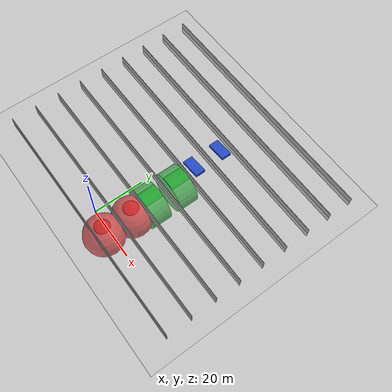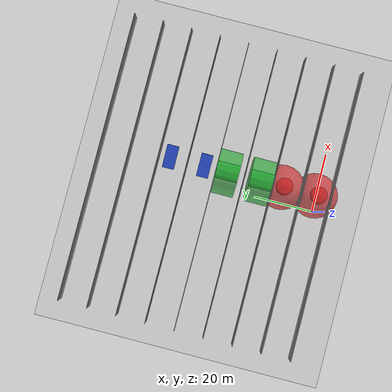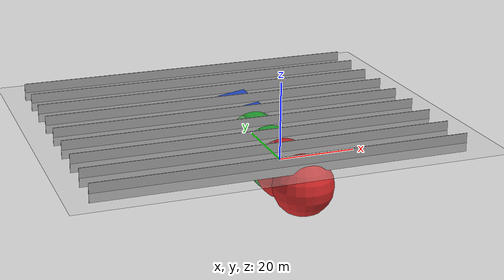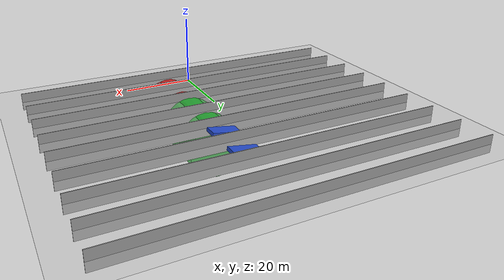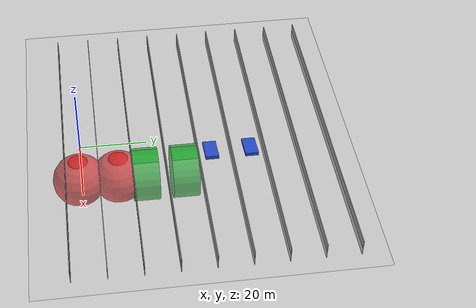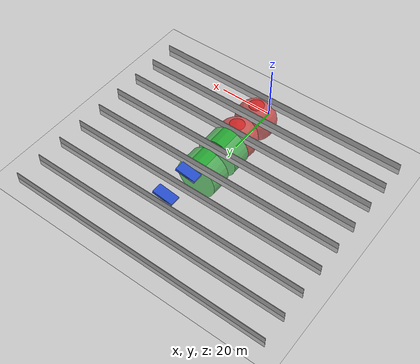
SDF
<sdf version='1.7'>
  <world name='default'>
    <light name='sun' type='directional'>
      <cast_shadows>1</cast_shadows>
      <pose>0 0 10 0 -0 0</pose>
      <diffuse>0.8 0.8 0.8 1</diffuse>
      <specular>0.2 0.2 0.2 1</specular>
      <attenuation>
        <range>1000</range>
        <constant>0.9</constant>
        <linear>0.01</linear>
        <quadratic>0.001</quadratic>
      </attenuation>
      <direction>-0.5 0.1 -0.9</direction>
      <spot>
        <inner_angle>0</inner_angle>
        <outer_angle>0</outer_angle>
        <falloff>0</falloff>
      </spot>
    </light>
    <model name='ground_plane'>
      <static>1</static>
      <pose>0 35 0 0 -0 0</pose>
      <link name='link'>
        <collision name='collision'>
          <geometry>
            <plane>
              <normal>0 0 1</normal>
              <size>100 100</size>
            </plane>
          </geometry>
          <surface>
            <friction>
              <ode>
                <mu>100</mu>
                <mu2>50</mu2>
              </ode>
              <torsional>
                <ode/>
              </torsional>
            </friction>
            <contact>
              <ode/>
            </contact>
            <bounce/>
          </surface>
          <max_contacts>10</max_contacts>
        </collision>
        <visual name='visual'>
          <cast_shadows>0</cast_shadows>
          <geometry>
            <plane>
              <normal>0 0 1</normal>
              <size>100 100</size>
            </plane>
          </geometry>
          <material>
            <script>
              <uri>file://media/materials/scripts/gazebo.material</uri>
              <name>Gazebo/Grey</name>
            </script>
          </material>
        </visual>
        <self_collide>0</self_collide>
        <enable_wind>0</enable_wind>
        <kinematic>0</kinematic>
      </link>
    </model>
    <gravity>0 0 -9.8</gravity>
    <magnetic_field>6e-06 2.3e-05 -4.2e-05</magnetic_field>
    <atmosphere type='adiabatic'/>
    <physics type='ode'>
      <max_step_size>0.001</max_step_size>
      <real_time_factor>1</real_time_factor>
      <real_time_update_rate>1000</real_time_update_rate>
    </physics>
    <scene>
      <ambient>0.4 0.4 0.4 1</ambient>
      <background>0.7 0.7 0.7 1</background>
      <shadows>1</shadows>
    </scene>
    <wind/>
    <spherical_coordinates>
      <surface_model>EARTH_WGS84</surface_model>
      <latitude_deg>0</latitude_deg>
      <longitude_deg>0</longitude_deg>
      <elevation>0</elevation>
      <heading_deg>0</heading_deg>
    </spherical_coordinates>
    <model name='terrain'>
      <pose>0 -5 0 0 -0 0</pose>
      <link name='link_1'>
        <pose>0 0 0 0 -0 0</pose>
        <gravity>1</gravity>
        <self_collide>0</self_collide>
        <kinematic>0</kinematic>
        <enable_wind>0</enable_wind>
        <inertial>
          <mass>1</mass>
          <pose>0 0 0 0 -0 0</pose>
          <inertia>
            <ixx>1</ixx>
            <ixy>0</ixy>
            <ixz>0</ixz>
            <iyy>1</iyy>
            <iyz>0</iyz>
            <izz>1</izz>
          </inertia>
        </inertial>
        <visual name='ModelPreview_1::link_1::visual_7'>
          <pose>0 70 0 0 -0 0</pose>
          <geometry>
            <box>
              <size>100 0.2 5</size>
            </box>
          </geometry>
          <material>
            <lighting>1</lighting>
            <script>
              <uri>file://media/materials/scripts/gazebo.material</uri>
              <name>Gazebo/Grey</name>
            </script>
            <shader type='pixel'>
              <normal_map>__default__</normal_map>
            </shader>
            <ambient>0.3 0.3 0.3 1</ambient>
            <diffuse>0.7 0.7 0.7 1</diffuse>
            <specular>0.01 0.01 0.01 1</specular>
            <emissive>0 0 0 1</emissive>
          </material>
          <transparency>0</transparency>
          <cast_shadows>1</cast_shadows>
        </visual>
        <visual name='ModelPreview_1::link_1::visual_1'>
          <pose>0 10 0 0 -0 0</pose>
          <geometry>
            <box>
              <size>100 0.2 5</size>
            </box>
          </geometry>
          <material>
            <lighting>1</lighting>
            <script>
              <uri>file://media/materials/scripts/gazebo.material</uri>
              <name>Gazebo/Grey</name>
            </script>
            <shader type='pixel'>
              <normal_map>__default__</normal_map>
            </shader>
            <ambient>0.3 0.3 0.3 1</ambient>
            <diffuse>0.7 0.7 0.7 1</diffuse>
            <specular>0.01 0.01 0.01 1</specular>
            <emissive>0 0 0 1</emissive>
          </material>
          <transparency>0</transparency>
          <cast_shadows>1</cast_shadows>
        </visual>
        <visual name='ModelPreview_1::link_1::visual_3'>
          <pose>0 30 0 0 -0 0</pose>
          <geometry>
            <box>
              <size>100 0.2 5</size>
            </box>
          </geometry>
          <material>
            <lighting>1</lighting>
            <script>
              <uri>file://media/materials/scripts/gazebo.material</uri>
              <name>Gazebo/Grey</name>
            </script>
            <shader type='pixel'>
              <normal_map>__default__</normal_map>
            </shader>
            <ambient>0.3 0.3 0.3 1</ambient>
            <diffuse>0.7 0.7 0.7 1</diffuse>
            <specular>0.01 0.01 0.01 1</specular>
            <emissive>0 0 0 1</emissive>
          </material>
          <transparency>0</transparency>
          <cast_shadows>1</cast_shadows>
        </visual>
        <visual name='ModelPreview_1::link_1::visual_8'>
          <pose>0 80 0 0 -0 0</pose>
          <geometry>
            <box>
              <size>100 0.2 5</size>
            </box>
          </geometry>
          <material>
            <lighting>1</lighting>
            <script>
              <uri>file://media/materials/scripts/gazebo.material</uri>
              <name>Gazebo/Grey</name>
            </script>
            <shader type='pixel'>
              <normal_map>__default__</normal_map>
            </shader>
            <ambient>0.3 0.3 0.3 1</ambient>
            <diffuse>0.7 0.7 0.7 1</diffuse>
            <specular>0.01 0.01 0.01 1</specular>
            <emissive>0 0 0 1</emissive>
          </material>
          <transparency>0</transparency>
          <cast_shadows>1</cast_shadows>
        </visual>
        <visual name='ModelPreview_1::link_1::visual_5'>
          <pose>0 50 0 0 -0 0</pose>
          <geometry>
            <box>
              <size>100 0.2 5</size>
            </box>
          </geometry>
          <material>
            <lighting>1</lighting>
            <script>
              <uri>file://media/materials/scripts/gazebo.material</uri>
              <name>Gazebo/Grey</name>
            </script>
            <shader type='pixel'>
              <normal_map>__default__</normal_map>
            </shader>
            <ambient>0.3 0.3 0.3 1</ambient>
            <diffuse>0.7 0.7 0.7 1</diffuse>
            <specular>0.01 0.01 0.01 1</specular>
            <emissive>0 0 0 1</emissive>
          </material>
          <transparency>0</transparency>
          <cast_shadows>1</cast_shadows>
        </visual>
        <visual name='visual'>
          <pose>0 0 0 0 -0 0</pose>
          <geometry>
            <box>
              <size>100 0.2 5</size>
            </box>
          </geometry>
          <material>
            <lighting>1</lighting>
            <script>
              <uri>file://media/materials/scripts/gazebo.material</uri>
              <name>Gazebo/Grey</name>
            </script>
            <shader type='pixel'>
              <normal_map>__default__</normal_map>
            </shader>
            <ambient>0.3 0.3 0.3 1</ambient>
            <diffuse>0.7 0.7 0.7 1</diffuse>
            <specular>0.01 0.01 0.01 1</specular>
            <emissive>0 0 0 1</emissive>
          </material>
          <transparency>0</transparency>
          <cast_shadows>1</cast_shadows>
        </visual>
        <visual name='ModelPreview_1::link_1::visual_2'>
          <pose>0 20 0 0 -0 0</pose>
          <geometry>
            <box>
              <size>100 0.2 5</size>
            </box>
          </geometry>
          <material>
            <lighting>1</lighting>
            <script>
              <uri>file://media/materials/scripts/gazebo.material</uri>
              <name>Gazebo/Grey</name>
            </script>
            <shader type='pixel'>
              <normal_map>__default__</normal_map>
            </shader>
            <ambient>0.3 0.3 0.3 1</ambient>
            <diffuse>0.7 0.7 0.7 1</diffuse>
            <specular>0.01 0.01 0.01 1</specular>
            <emissive>0 0 0 1</emissive>
          </material>
          <transparency>0</transparency>
          <cast_shadows>1</cast_shadows>
        </visual>
        <visual name='ModelPreview_1::link_1::visual_6'>
          <pose>0 60 0 0 -0 0</pose>
          <geometry>
            <box>
              <size>100 0.2 5</size>
            </box>
          </geometry>
          <material>
            <lighting>1</lighting>
            <script>
              <uri>file://media/materials/scripts/gazebo.material</uri>
              <name>Gazebo/Grey</name>
            </script>
            <shader type='pixel'>
              <normal_map>__default__</normal_map>
            </shader>
            <ambient>0.3 0.3 0.3 1</ambient>
            <diffuse>0.7 0.7 0.7 1</diffuse>
            <specular>0.01 0.01 0.01 1</specular>
            <emissive>0 0 0 1</emissive>
          </material>
          <transparency>0</transparency>
          <cast_shadows>1</cast_shadows>
        </visual>
        <visual name='ModelPreview_1::link_1::visual_4'>
          <pose>0 40 0 0 -0 0</pose>
          <geometry>
            <box>
              <size>100 0.2 5</size>
            </box>
          </geometry>
          <material>
            <lighting>1</lighting>
            <script>
              <uri>file://media/materials/scripts/gazebo.material</uri>
              <name>Gazebo/Grey</name>
            </script>
            <shader type='pixel'>
              <normal_map>__default__</normal_map>
            </shader>
            <ambient>0.3 0.3 0.3 1</ambient>
            <diffuse>0.7 0.7 0.7 1</diffuse>
            <specular>0.01 0.01 0.01 1</specular>
            <emissive>0 0 0 1</emissive>
          </material>
          <transparency>0</transparency>
          <cast_shadows>1</cast_shadows>
        </visual>
        <collision name='collision_7'>
          <laser_retro>0</laser_retro>
          <max_contacts>10</max_contacts>
          <pose>0 70 0 0 -0 0</pose>
          <geometry>
            <box>
              <size>100 0.2 5</size>
            </box>
          </geometry>
          <surface>
            <friction>
              <ode>
                <mu>100</mu>
                <mu2>50</mu2>
                <fdir1>0 0 0</fdir1>
                <slip1>0</slip1>
                <slip2>0</slip2>
              </ode>
              <torsional>
                <coefficient>1</coefficient>
                <patch_radius>0</patch_radius>
                <surface_radius>0</surface_radius>
                <use_patch_radius>1</use_patch_radius>
                <ode>
                  <slip>0</slip>
                </ode>
              </torsional>
            </friction>
            <bounce>
              <restitution_coefficient>0</restitution_coefficient>
              <threshold>1e+06</threshold>
            </bounce>
            <contact>
              <collide_without_contact>0</collide_without_contact>
              <collide_without_contact_bitmask>1</collide_without_contact_bitmask>
              <collide_bitmask>1</collide_bitmask>
              <ode>
                <soft_cfm>0</soft_cfm>
                <soft_erp>0.2</soft_erp>
                <kp>1e+13</kp>
                <kd>1</kd>
                <max_vel>0.01</max_vel>
                <min_depth>0</min_depth>
              </ode>
              <bullet>
                <split_impulse>1</split_impulse>
                <split_impulse_penetration_threshold>-0.01</split_impulse_penetration_threshold>
                <soft_cfm>0</soft_cfm>
                <soft_erp>0.2</soft_erp>
                <kp>1e+13</kp>
                <kd>1</kd>
              </bullet>
            </contact>
          </surface>
        </collision>
        <collision name='collision_4'>
          <laser_retro>0</laser_retro>
          <max_contacts>10</max_contacts>
          <pose>0 40 0 0 -0 0</pose>
          <geometry>
            <box>
              <size>100 0.2 5</size>
            </box>
          </geometry>
          <surface>
            <friction>
              <ode>
                <mu>100</mu>
                <mu2>50</mu2>
                <fdir1>0 0 0</fdir1>
                <slip1>0</slip1>
                <slip2>0</slip2>
              </ode>
              <torsional>
                <coefficient>1</coefficient>
                <patch_radius>0</patch_radius>
                <surface_radius>0</surface_radius>
                <use_patch_radius>1</use_patch_radius>
                <ode>
                  <slip>0</slip>
                </ode>
              </torsional>
            </friction>
            <bounce>
              <restitution_coefficient>0</restitution_coefficient>
              <threshold>1e+06</threshold>
            </bounce>
            <contact>
              <collide_without_contact>0</collide_without_contact>
              <collide_without_contact_bitmask>1</collide_without_contact_bitmask>
              <collide_bitmask>1</collide_bitmask>
              <ode>
                <soft_cfm>0</soft_cfm>
                <soft_erp>0.2</soft_erp>
                <kp>1e+13</kp>
                <kd>1</kd>
                <max_vel>0.01</max_vel>
                <min_depth>0</min_depth>
              </ode>
              <bullet>
                <split_impulse>1</split_impulse>
                <split_impulse_penetration_threshold>-0.01</split_impulse_penetration_threshold>
                <soft_cfm>0</soft_cfm>
                <soft_erp>0.2</soft_erp>
                <kp>1e+13</kp>
                <kd>1</kd>
              </bullet>
            </contact>
          </surface>
        </collision>
        <collision name='collision_2'>
          <laser_retro>0</laser_retro>
          <max_contacts>10</max_contacts>
          <pose>0 20 0 0 -0 0</pose>
          <geometry>
            <box>
              <size>100 0.2 5</size>
            </box>
          </geometry>
          <surface>
            <friction>
              <ode>
                <mu>100</mu>
                <mu2>50</mu2>
                <fdir1>0 0 0</fdir1>
                <slip1>0</slip1>
                <slip2>0</slip2>
              </ode>
              <torsional>
                <coefficient>1</coefficient>
                <patch_radius>0</patch_radius>
                <surface_radius>0</surface_radius>
                <use_patch_radius>1</use_patch_radius>
                <ode>
                  <slip>0</slip>
                </ode>
              </torsional>
            </friction>
            <bounce>
              <restitution_coefficient>0</restitution_coefficient>
              <threshold>1e+06</threshold>
            </bounce>
            <contact>
              <collide_without_contact>0</collide_without_contact>
              <collide_without_contact_bitmask>1</collide_without_contact_bitmask>
              <collide_bitmask>1</collide_bitmask>
              <ode>
                <soft_cfm>0</soft_cfm>
                <soft_erp>0.2</soft_erp>
                <kp>1e+13</kp>
                <kd>1</kd>
                <max_vel>0.01</max_vel>
                <min_depth>0</min_depth>
              </ode>
              <bullet>
                <split_impulse>1</split_impulse>
                <split_impulse_penetration_threshold>-0.01</split_impulse_penetration_threshold>
                <soft_cfm>0</soft_cfm>
                <soft_erp>0.2</soft_erp>
                <kp>1e+13</kp>
                <kd>1</kd>
              </bullet>
            </contact>
          </surface>
        </collision>
        <collision name='collision_8'>
          <laser_retro>0</laser_retro>
          <max_contacts>10</max_contacts>
          <pose>0 80 0 0 -0 0</pose>
          <geometry>
            <box>
              <size>100 0.2 5</size>
            </box>
          </geometry>
          <surface>
            <friction>
              <ode>
                <mu>100</mu>
                <mu2>50</mu2>
                <fdir1>0 0 0</fdir1>
                <slip1>0</slip1>
                <slip2>0</slip2>
              </ode>
              <torsional>
                <coefficient>1</coefficient>
                <patch_radius>0</patch_radius>
                <surface_radius>0</surface_radius>
                <use_patch_radius>1</use_patch_radius>
                <ode>
                  <slip>0</slip>
                </ode>
              </torsional>
            </friction>
            <bounce>
              <restitution_coefficient>0</restitution_coefficient>
              <threshold>1e+06</threshold>
            </bounce>
            <contact>
              <collide_without_contact>0</collide_without_contact>
              <collide_without_contact_bitmask>1</collide_without_contact_bitmask>
              <collide_bitmask>1</collide_bitmask>
              <ode>
                <soft_cfm>0</soft_cfm>
                <soft_erp>0.2</soft_erp>
                <kp>1e+13</kp>
                <kd>1</kd>
                <max_vel>0.01</max_vel>
                <min_depth>0</min_depth>
              </ode>
              <bullet>
                <split_impulse>1</split_impulse>
                <split_impulse_penetration_threshold>-0.01</split_impulse_penetration_threshold>
                <soft_cfm>0</soft_cfm>
                <soft_erp>0.2</soft_erp>
                <kp>1e+13</kp>
                <kd>1</kd>
              </bullet>
            </contact>
          </surface>
        </collision>
        <collision name='collision_1'>
          <laser_retro>0</laser_retro>
          <max_contacts>10</max_contacts>
          <pose>0 10 0 0 -0 0</pose>
          <geometry>
            <box>
              <size>100 0.2 5</size>
            </box>
          </geometry>
          <surface>
            <friction>
              <ode>
                <mu>100</mu>
                <mu2>50</mu2>
                <fdir1>0 0 0</fdir1>
                <slip1>0</slip1>
                <slip2>0</slip2>
              </ode>
              <torsional>
                <coefficient>1</coefficient>
                <patch_radius>0</patch_radius>
                <surface_radius>0</surface_radius>
                <use_patch_radius>1</use_patch_radius>
                <ode>
                  <slip>0</slip>
                </ode>
              </torsional>
            </friction>
            <bounce>
              <restitution_coefficient>0</restitution_coefficient>
              <threshold>1e+06</threshold>
            </bounce>
            <contact>
              <collide_without_contact>0</collide_without_contact>
              <collide_without_contact_bitmask>1</collide_without_contact_bitmask>
              <collide_bitmask>1</collide_bitmask>
              <ode>
                <soft_cfm>0</soft_cfm>
                <soft_erp>0.2</soft_erp>
                <kp>1e+13</kp>
                <kd>1</kd>
                <max_vel>0.01</max_vel>
                <min_depth>0</min_depth>
              </ode>
              <bullet>
                <split_impulse>1</split_impulse>
                <split_impulse_penetration_threshold>-0.01</split_impulse_penetration_threshold>
                <soft_cfm>0</soft_cfm>
                <soft_erp>0.2</soft_erp>
                <kp>1e+13</kp>
                <kd>1</kd>
              </bullet>
            </contact>
          </surface>
        </collision>
        <collision name='collision_6'>
          <laser_retro>0</laser_retro>
          <max_contacts>10</max_contacts>
          <pose>0 60 0 0 -0 0</pose>
          <geometry>
            <box>
              <size>100 0.2 5</size>
            </box>
          </geometry>
          <surface>
            <friction>
              <ode>
                <mu>100</mu>
                <mu2>50</mu2>
                <fdir1>0 0 0</fdir1>
                <slip1>0</slip1>
                <slip2>0</slip2>
              </ode>
              <torsional>
                <coefficient>1</coefficient>
                <patch_radius>0</patch_radius>
                <surface_radius>0</surface_radius>
                <use_patch_radius>1</use_patch_radius>
                <ode>
                  <slip>0</slip>
                </ode>
              </torsional>
            </friction>
            <bounce>
              <restitution_coefficient>0</restitution_coefficient>
              <threshold>1e+06</threshold>
            </bounce>
            <contact>
              <collide_without_contact>0</collide_without_contact>
              <collide_without_contact_bitmask>1</collide_without_contact_bitmask>
              <collide_bitmask>1</collide_bitmask>
              <ode>
                <soft_cfm>0</soft_cfm>
                <soft_erp>0.2</soft_erp>
                <kp>1e+13</kp>
                <kd>1</kd>
                <max_vel>0.01</max_vel>
                <min_depth>0</min_depth>
              </ode>
              <bullet>
                <split_impulse>1</split_impulse>
                <split_impulse_penetration_threshold>-0.01</split_impulse_penetration_threshold>
                <soft_cfm>0</soft_cfm>
                <soft_erp>0.2</soft_erp>
                <kp>1e+13</kp>
                <kd>1</kd>
              </bullet>
            </contact>
          </surface>
        </collision>
        <collision name='collision'>
          <laser_retro>0</laser_retro>
          <max_contacts>10</max_contacts>
          <pose>0 0 0 0 -0 0</pose>
          <geometry>
            <box>
              <size>100 0.2 5</size>
            </box>
          </geometry>
          <surface>
            <friction>
              <ode>
                <mu>100</mu>
                <mu2>50</mu2>
                <fdir1>0 0 0</fdir1>
                <slip1>0</slip1>
                <slip2>0</slip2>
              </ode>
              <torsional>
                <coefficient>1</coefficient>
                <patch_radius>0</patch_radius>
                <surface_radius>0</surface_radius>
                <use_patch_radius>1</use_patch_radius>
                <ode>
                  <slip>0</slip>
                </ode>
              </torsional>
            </friction>
            <bounce>
              <restitution_coefficient>0</restitution_coefficient>
              <threshold>1e+06</threshold>
            </bounce>
            <contact>
              <collide_without_contact>0</collide_without_contact>
              <collide_without_contact_bitmask>1</collide_without_contact_bitmask>
              <collide_bitmask>1</collide_bitmask>
              <ode>
                <soft_cfm>0</soft_cfm>
                <soft_erp>0.2</soft_erp>
                <kp>1e+13</kp>
                <kd>1</kd>
                <max_vel>0.01</max_vel>
                <min_depth>0</min_depth>
              </ode>
              <bullet>
                <split_impulse>1</split_impulse>
                <split_impulse_penetration_threshold>-0.01</split_impulse_penetration_threshold>
                <soft_cfm>0</soft_cfm>
                <soft_erp>0.2</soft_erp>
                <kp>1e+13</kp>
                <kd>1</kd>
              </bullet>
            </contact>
          </surface>
        </collision>
        <collision name='collision_3'>
          <laser_retro>0</laser_retro>
          <max_contacts>10</max_contacts>
          <pose>0 30 0 0 -0 0</pose>
          <geometry>
            <box>
              <size>100 0.2 5</size>
            </box>
          </geometry>
          <surface>
            <friction>
              <ode>
                <mu>100</mu>
                <mu2>50</mu2>
                <fdir1>0 0 0</fdir1>
                <slip1>0</slip1>
                <slip2>0</slip2>
              </ode>
              <torsional>
                <coefficient>1</coefficient>
                <patch_radius>0</patch_radius>
                <surface_radius>0</surface_radius>
                <use_patch_radius>1</use_patch_radius>
                <ode>
                  <slip>0</slip>
                </ode>
              </torsional>
            </friction>
            <bounce>
              <restitution_coefficient>0</restitution_coefficient>
              <threshold>1e+06</threshold>
            </bounce>
            <contact>
              <collide_without_contact>0</collide_without_contact>
              <collide_without_contact_bitmask>1</collide_without_contact_bitmask>
              <collide_bitmask>1</collide_bitmask>
              <ode>
                <soft_cfm>0</soft_cfm>
                <soft_erp>0.2</soft_erp>
                <kp>1e+13</kp>
                <kd>1</kd>
                <max_vel>0.01</max_vel>
                <min_depth>0</min_depth>
              </ode>
              <bullet>
                <split_impulse>1</split_impulse>
                <split_impulse_penetration_threshold>-0.01</split_impulse_penetration_threshold>
                <soft_cfm>0</soft_cfm>
                <soft_erp>0.2</soft_erp>
                <kp>1e+13</kp>
                <kd>1</kd>
              </bullet>
            </contact>
          </surface>
        </collision>
        <collision name='collision_5'>
          <laser_retro>0</laser_retro>
          <max_contacts>10</max_contacts>
          <pose>0 50 0 0 -0 0</pose>
          <geometry>
            <box>
              <size>100 0.2 5</size>
            </box>
          </geometry>
          <surface>
            <friction>
              <ode>
                <mu>100</mu>
                <mu2>50</mu2>
                <fdir1>0 0 0</fdir1>
                <slip1>0</slip1>
                <slip2>0</slip2>
              </ode>
              <torsional>
                <coefficient>1</coefficient>
                <patch_radius>0</patch_radius>
                <surface_radius>0</surface_radius>
                <use_patch_radius>1</use_patch_radius>
                <ode>
                  <slip>0</slip>
                </ode>
              </torsional>
            </friction>
            <bounce>
              <restitution_coefficient>0</restitution_coefficient>
              <threshold>1e+06</threshold>
            </bounce>
            <contact>
              <collide_without_contact>0</collide_without_contact>
              <collide_without_contact_bitmask>1</collide_without_contact_bitmask>
              <collide_bitmask>1</collide_bitmask>
              <ode>
                <soft_cfm>0</soft_cfm>
                <soft_erp>0.2</soft_erp>
                <kp>1e+13</kp>
                <kd>1</kd>
                <max_vel>0.01</max_vel>
                <min_depth>0</min_depth>
              </ode>
              <bullet>
                <split_impulse>1</split_impulse>
                <split_impulse_penetration_threshold>-0.01</split_impulse_penetration_threshold>
                <soft_cfm>0</soft_cfm>
                <soft_erp>0.2</soft_erp>
                <kp>1e+13</kp>
                <kd>1</kd>
              </bullet>
            </contact>
          </surface>
        </collision>
      </link>
      <link name='link_1_0'>
        <inertial>
          <mass>1</mass>
          <inertia>
            <ixx>0.1</ixx>
            <ixy>0</ixy>
            <ixz>0</ixz>
            <iyy>0.1</iyy>
            <iyz>0</iyz>
            <izz>0.1</izz>
          </inertia>
          <pose>0 0 0 0 -0 0</pose>
        </inertial>
        <pose>6 4 -7.5 0 -0 0</pose>
        <gravity>1</gravity>
        <self_collide>0</self_collide>
        <kinematic>0</kinematic>
        <enable_wind>0</enable_wind>
        <visual name='visual'>
          <pose>0 0 0 0 -0 0</pose>
          <geometry>
            <sphere>
              <radius>8</radius>
            </sphere>
          </geometry>
          <material>
            <lighting>1</lighting>
            <script>
              <uri>file://media/materials/scripts/gazebo.material</uri>
              <name>Gazebo/Red</name>
            </script>
            <shader type='pixel'>
              <normal_map>__default__</normal_map>
            </shader>
            <ambient>0.3 0.1 0.1 1</ambient>
            <diffuse>1 0 0 1</diffuse>
            <specular>0.1 0.1 0.1 1</specular>
            <emissive>0 0 0 1</emissive>
          </material>
          <transparency>0</transparency>
          <cast_shadows>1</cast_shadows>
        </visual>
        <collision name='collision'>
          <laser_retro>0</laser_retro>
          <max_contacts>10</max_contacts>
          <pose>0 0 0 0 -0 0</pose>
          <geometry>
            <sphere>
              <radius>8</radius>
            </sphere>
          </geometry>
          <surface>
            <friction>
              <ode>
                <mu>100</mu>
                <mu2>50</mu2>
                <fdir1>0 0 0</fdir1>
                <slip1>0</slip1>
                <slip2>0</slip2>
              </ode>
              <torsional>
                <coefficient>1</coefficient>
                <patch_radius>0</patch_radius>
                <surface_radius>0</surface_radius>
                <use_patch_radius>1</use_patch_radius>
                <ode>
                  <slip>0</slip>
                </ode>
              </torsional>
            </friction>
            <bounce>
              <restitution_coefficient>0</restitution_coefficient>
              <threshold>1e+06</threshold>
            </bounce>
            <contact>
              <collide_without_contact>0</collide_without_contact>
              <collide_without_contact_bitmask>1</collide_without_contact_bitmask>
              <collide_bitmask>1</collide_bitmask>
              <ode>
                <soft_cfm>0</soft_cfm>
                <soft_erp>0.2</soft_erp>
                <kp>1e+13</kp>
                <kd>1</kd>
                <max_vel>0.01</max_vel>
                <min_depth>0</min_depth>
              </ode>
              <bullet>
                <split_impulse>1</split_impulse>
                <split_impulse_penetration_threshold>-0.01</split_impulse_penetration_threshold>
                <soft_cfm>0</soft_cfm>
                <soft_erp>0.2</soft_erp>
                <kp>1e+13</kp>
                <kd>1</kd>
              </bullet>
            </contact>
          </surface>
        </collision>
      </link>
      <link name='link_1_0_clone'>
        <inertial>
          <mass>1</mass>
          <inertia>
            <ixx>0.1</ixx>
            <ixy>0</ixy>
            <ixz>0</ixz>
            <iyy>0.1</iyy>
            <iyz>0</iyz>
            <izz>0.1</izz>
          </inertia>
          <pose>0 0 0 0 -0 0</pose>
        </inertial>
        <pose>6 16 -7.5 0 -0 0</pose>
        <gravity>1</gravity>
        <self_collide>0</self_collide>
        <kinematic>0</kinematic>
        <enable_wind>0</enable_wind>
        <visual name='visual_0'>
          <pose>0 0 0 0 -0 0</pose>
          <geometry>
            <sphere>
              <radius>8</radius>
            </sphere>
          </geometry>
          <material>
            <lighting>1</lighting>
            <script>
              <uri>file://media/materials/scripts/gazebo.material</uri>
              <name>Gazebo/Red</name>
            </script>
            <shader type='pixel'>
              <normal_map>__default__</normal_map>
            </shader>
            <ambient>0.3 0.1 0.1 1</ambient>
            <diffuse>1 0 0 1</diffuse>
            <specular>0.1 0.1 0.1 1</specular>
            <emissive>0 0 0 1</emissive>
          </material>
          <transparency>0</transparency>
          <cast_shadows>1</cast_shadows>
        </visual>
        <collision name='collision'>
          <laser_retro>0</laser_retro>
          <max_contacts>10</max_contacts>
          <pose>0 0 0 0 -0 0</pose>
          <geometry>
            <sphere>
              <radius>8</radius>
            </sphere>
          </geometry>
          <surface>
            <friction>
              <ode>
                <mu>100</mu>
                <mu2>50</mu2>
                <fdir1>0 0 0</fdir1>
                <slip1>0</slip1>
                <slip2>0</slip2>
              </ode>
              <torsional>
                <coefficient>1</coefficient>
                <patch_radius>0</patch_radius>
                <surface_radius>0</surface_radius>
                <use_patch_radius>1</use_patch_radius>
                <ode>
                  <slip>0</slip>
                </ode>
              </torsional>
            </friction>
            <bounce>
              <restitution_coefficient>0</restitution_coefficient>
              <threshold>1e+06</threshold>
            </bounce>
            <contact>
              <collide_without_contact>0</collide_without_contact>
              <collide_without_contact_bitmask>1</collide_without_contact_bitmask>
              <collide_bitmask>1</collide_bitmask>
              <ode>
                <soft_cfm>0</soft_cfm>
                <soft_erp>0.2</soft_erp>
                <kp>1e+13</kp>
                <kd>1</kd>
                <max_vel>0.01</max_vel>
                <min_depth>0</min_depth>
              </ode>
              <bullet>
                <split_impulse>1</split_impulse>
                <split_impulse_penetration_threshold>-0.01</split_impulse_penetration_threshold>
                <soft_cfm>0</soft_cfm>
                <soft_erp>0.2</soft_erp>
                <kp>1e+13</kp>
                <kd>1</kd>
              </bullet>
            </contact>
          </surface>
        </collision>
      </link>
      <link name='link_3'>
        <inertial>
          <mass>1</mass>
          <inertia>
            <ixx>0.145833</ixx>
            <ixy>0</ixy>
            <ixz>0</ixz>
            <iyy>0.145833</iyy>
            <iyz>0</iyz>
            <izz>0.125</izz>
          </inertia>
          <pose>0 0 0 0 -0 0</pose>
        </inertial>
        <pose>6 24 -7.5 1.57 -0 0</pose>
        <gravity>1</gravity>
        <self_collide>0</self_collide>
        <kinematic>0</kinematic>
        <enable_wind>0</enable_wind>
        <visual name='visual'>
          <pose>0 0 0 0 -0 0</pose>
          <geometry>
            <cylinder>
              <radius>8</radius>
              <length>8</length>
            </cylinder>
          </geometry>
          <material>
            <lighting>1</lighting>
            <script>
              <uri>file://media/materials/scripts/gazebo.material</uri>
              <name>Gazebo/Green</name>
            </script>
            <shader type='pixel'>
              <normal_map>__default__</normal_map>
            </shader>
            <ambient>0.1 0.3 0.1 1</ambient>
            <diffuse>0 1 0 1</diffuse>
            <specular>0.1 0.1 0.1 1</specular>
            <emissive>0 0 0 1</emissive>
          </material>
          <transparency>0</transparency>
          <cast_shadows>1</cast_shadows>
        </visual>
        <collision name='collision'>
          <laser_retro>0</laser_retro>
          <max_contacts>10</max_contacts>
          <pose>0 0 0 0 -0 0</pose>
          <geometry>
            <cylinder>
              <radius>8</radius>
              <length>8</length>
            </cylinder>
          </geometry>
          <surface>
            <friction>
              <ode>
                <mu>100</mu>
                <mu2>50</mu2>
                <fdir1>0 0 0</fdir1>
                <slip1>0</slip1>
                <slip2>0</slip2>
              </ode>
              <torsional>
                <coefficient>1</coefficient>
                <patch_radius>0</patch_radius>
                <surface_radius>0</surface_radius>
                <use_patch_radius>1</use_patch_radius>
                <ode>
                  <slip>0</slip>
                </ode>
              </torsional>
            </friction>
            <bounce>
              <restitution_coefficient>0</restitution_coefficient>
              <threshold>1e+06</threshold>
            </bounce>
            <contact>
              <collide_without_contact>0</collide_without_contact>
              <collide_without_contact_bitmask>1</collide_without_contact_bitmask>
              <collide_bitmask>1</collide_bitmask>
              <ode>
                <soft_cfm>0</soft_cfm>
                <soft_erp>0.2</soft_erp>
                <kp>1e+13</kp>
                <kd>1</kd>
                <max_vel>0.01</max_vel>
                <min_depth>0</min_depth>
              </ode>
              <bullet>
                <split_impulse>1</split_impulse>
                <split_impulse_penetration_threshold>-0.01</split_impulse_penetration_threshold>
                <soft_cfm>0</soft_cfm>
                <soft_erp>0.2</soft_erp>
                <kp>1e+13</kp>
                <kd>1</kd>
              </bullet>
            </contact>
          </surface>
        </collision>
      </link>
      <link name='link_3_clone'>
        <inertial>
          <mass>1</mass>
          <inertia>
            <ixx>0.145833</ixx>
            <ixy>0</ixy>
            <ixz>0</ixz>
            <iyy>0.145833</iyy>
            <iyz>0</iyz>
            <izz>0.125</izz>
          </inertia>
          <pose>0 0 0 0 -0 0</pose>
        </inertial>
        <pose>6 36 -7.5 1.57 -0 0</pose>
        <gravity>1</gravity>
        <self_collide>0</self_collide>
        <kinematic>0</kinematic>
        <enable_wind>0</enable_wind>
        <visual name='visual'>
          <pose>0 0 0 0 -0 0</pose>
          <geometry>
            <cylinder>
              <radius>8</radius>
              <length>8</length>
            </cylinder>
          </geometry>
          <material>
            <lighting>1</lighting>
            <script>
              <uri>file://media/materials/scripts/gazebo.material</uri>
              <name>Gazebo/Green</name>
            </script>
            <shader type='pixel'>
              <normal_map>__default__</normal_map>
            </shader>
            <ambient>0.1 0.3 0.1 1</ambient>
            <diffuse>0 1 0 1</diffuse>
            <specular>0.1 0.1 0.1 1</specular>
            <emissive>0 0 0 1</emissive>
          </material>
          <transparency>0</transparency>
          <cast_shadows>1</cast_shadows>
        </visual>
        <collision name='collision'>
          <laser_retro>0</laser_retro>
          <max_contacts>10</max_contacts>
          <pose>0 0 0 0 -0 0</pose>
          <geometry>
            <cylinder>
              <radius>8</radius>
              <length>8</length>
            </cylinder>
          </geometry>
          <surface>
            <friction>
              <ode>
                <mu>100</mu>
                <mu2>50</mu2>
                <fdir1>0 0 0</fdir1>
                <slip1>0</slip1>
                <slip2>0</slip2>
              </ode>
              <torsional>
                <coefficient>1</coefficient>
                <patch_radius>0</patch_radius>
                <surface_radius>0</surface_radius>
                <use_patch_radius>1</use_patch_radius>
                <ode>
                  <slip>0</slip>
                </ode>
              </torsional>
            </friction>
            <bounce>
              <restitution_coefficient>0</restitution_coefficient>
              <threshold>1e+06</threshold>
            </bounce>
            <contact>
              <collide_without_contact>0</collide_without_contact>
              <collide_without_contact_bitmask>1</collide_without_contact_bitmask>
              <collide_bitmask>1</collide_bitmask>
              <ode>
                <soft_cfm>0</soft_cfm>
                <soft_erp>0.2</soft_erp>
                <kp>1e+13</kp>
                <kd>1</kd>
                <max_vel>0.01</max_vel>
                <min_depth>0</min_depth>
              </ode>
              <bullet>
                <split_impulse>1</split_impulse>
                <split_impulse_penetration_threshold>-0.01</split_impulse_penetration_threshold>
                <soft_cfm>0</soft_cfm>
                <soft_erp>0.2</soft_erp>
                <kp>1e+13</kp>
                <kd>1</kd>
              </bullet>
            </contact>
          </surface>
        </collision>
      </link>
      <link name='link_4'>
        <inertial>
          <mass>1</mass>
          <inertia>
            <ixx>0.166667</ixx>
            <ixy>0</ixy>
            <ixz>0</ixz>
            <iyy>0.166667</iyy>
            <iyz>0</iyz>
            <izz>0.166667</izz>
          </inertia>
          <pose>0 0 0 0 -0 0</pose>
        </inertial>
        <pose>6 44 0 0 -0.15 0</pose>
        <gravity>1</gravity>
        <self_collide>0</self_collide>
        <kinematic>0</kinematic>
        <enable_wind>0</enable_wind>
        <visual name='visual'>
          <pose>0 0 0 0 -0 0</pose>
          <geometry>
            <box>
              <size>8 4 1</size>
            </box>
          </geometry>
          <material>
            <lighting>1</lighting>
            <script>
              <uri>file://media/materials/scripts/gazebo.material</uri>
              <name>Gazebo/Blue</name>
            </script>
            <shader type='pixel'>
              <normal_map>__default__</normal_map>
            </shader>
            <ambient>0.1 0.1 0.3 1</ambient>
            <diffuse>0 0 1 1</diffuse>
            <specular>0.1 0.1 0.1 1</specular>
            <emissive>0 0 0 1</emissive>
          </material>
          <transparency>0</transparency>
          <cast_shadows>1</cast_shadows>
        </visual>
        <collision name='collision'>
          <laser_retro>0</laser_retro>
          <max_contacts>10</max_contacts>
          <pose>0 0 0 0 -0 0</pose>
          <geometry>
            <box>
              <size>8 4 1</size>
            </box>
          </geometry>
          <surface>
            <friction>
              <ode>
                <mu>100</mu>
                <mu2>50</mu2>
                <fdir1>0 0 0</fdir1>
                <slip1>0</slip1>
                <slip2>0</slip2>
              </ode>
              <torsional>
                <coefficient>1</coefficient>
                <patch_radius>0</patch_radius>
                <surface_radius>0</surface_radius>
                <use_patch_radius>1</use_patch_radius>
                <ode>
                  <slip>0</slip>
                </ode>
              </torsional>
            </friction>
            <bounce>
              <restitution_coefficient>0</restitution_coefficient>
              <threshold>1e+06</threshold>
            </bounce>
            <contact>
              <collide_without_contact>0</collide_without_contact>
              <collide_without_contact_bitmask>1</collide_without_contact_bitmask>
              <collide_bitmask>1</collide_bitmask>
              <ode>
                <soft_cfm>0</soft_cfm>
                <soft_erp>0.2</soft_erp>
                <kp>1e+13</kp>
                <kd>1</kd>
                <max_vel>0.01</max_vel>
                <min_depth>0</min_depth>
              </ode>
              <bullet>
                <split_impulse>1</split_impulse>
                <split_impulse_penetration_threshold>-0.01</split_impulse_penetration_threshold>
                <soft_cfm>0</soft_cfm>
                <soft_erp>0.2</soft_erp>
                <kp>1e+13</kp>
                <kd>1</kd>
              </bullet>
            </contact>
          </surface>
        </collision>
      </link>
      <link name='link_4_clone'>
        <inertial>
          <mass>1</mass>
          <inertia>
            <ixx>0.166667</ixx>
            <ixy>0</ixy>
            <ixz>0</ixz>
            <iyy>0.166667</iyy>
            <iyz>0</iyz>
            <izz>0.166667</izz>
          </inertia>
          <pose>0 0 0 0 -0 0</pose>
        </inertial>
        <pose>6 56 0 0 -0.15 0</pose>
        <gravity>1</gravity>
        <self_collide>0</self_collide>
        <kinematic>0</kinematic>
        <enable_wind>0</enable_wind>
        <visual name='visual'>
          <pose>0 0 0 0 -0 0</pose>
          <geometry>
            <box>
              <size>8 4 1</size>
            </box>
          </geometry>
          <material>
            <lighting>1</lighting>
            <script>
              <uri>file://media/materials/scripts/gazebo.material</uri>
              <name>Gazebo/Blue</name>
            </script>
            <shader type='pixel'>
              <normal_map>__default__</normal_map>
            </shader>
            <ambient>0.1 0.1 0.3 1</ambient>
            <diffuse>0 0 1 1</diffuse>
            <specular>0.1 0.1 0.1 1</specular>
            <emissive>0 0 0 1</emissive>
          </material>
          <transparency>0</transparency>
          <cast_shadows>1</cast_shadows>
        </visual>
        <collision name='collision'>
          <laser_retro>0</laser_retro>
          <max_contacts>10</max_contacts>
          <pose>0 0 0 0 -0 0</pose>
          <geometry>
            <box>
              <size>8 4 1</size>
            </box>
          </geometry>
          <surface>
            <friction>
              <ode>
                <mu>100</mu>
                <mu2>50</mu2>
                <fdir1>0 0 0</fdir1>
                <slip1>0</slip1>
                <slip2>0</slip2>
              </ode>
              <torsional>
                <coefficient>1</coefficient>
                <patch_radius>0</patch_radius>
                <surface_radius>0</surface_radius>
                <use_patch_radius>1</use_patch_radius>
                <ode>
                  <slip>0</slip>
                </ode>
              </torsional>
            </friction>
            <bounce>
              <restitution_coefficient>0</restitution_coefficient>
              <threshold>1e+06</threshold>
            </bounce>
            <contact>
              <collide_without_contact>0</collide_without_contact>
              <collide_without_contact_bitmask>1</collide_without_contact_bitmask>
              <collide_bitmask>1</collide_bitmask>
              <ode>
                <soft_cfm>0</soft_cfm>
                <soft_erp>0.2</soft_erp>
                <kp>1e+13</kp>
                <kd>1</kd>
                <max_vel>0.01</max_vel>
                <min_depth>0</min_depth>
              </ode>
              <bullet>
                <split_impulse>1</split_impulse>
                <split_impulse_penetration_threshold>-0.01</split_impulse_penetration_threshold>
                <soft_cfm>0</soft_cfm>
                <soft_erp>0.2</soft_erp>
                <kp>1e+13</kp>
                <kd>1</kd>
              </bullet>
            </contact>
          </surface>
        </collision>
      </link>
      <static>1</static>
      <allow_auto_disable>1</allow_auto_disable>
      <pose>-0.041405 0.031243 0 0 -0 0</pose>
    </model>
    <gui fullscreen='0'>
      <camera name='user_camera'>
        <pose>-74.0806 -9.47354 99.2886 0 0.839643 0.244192</pose>
        <view_controller>orbit</view_controller>
        <projection_type>perspective</projection_type>
      </camera>
    </gui>
  </world>
</sdf>
